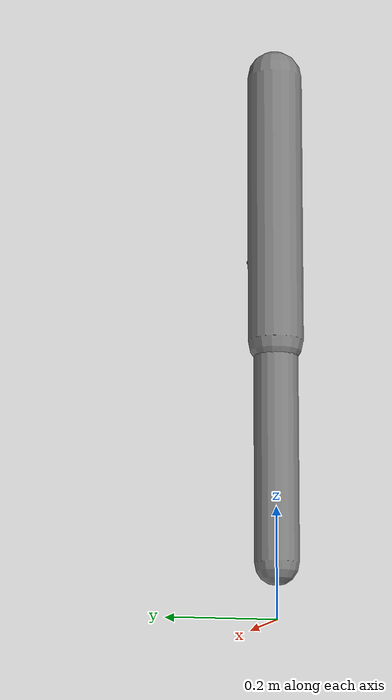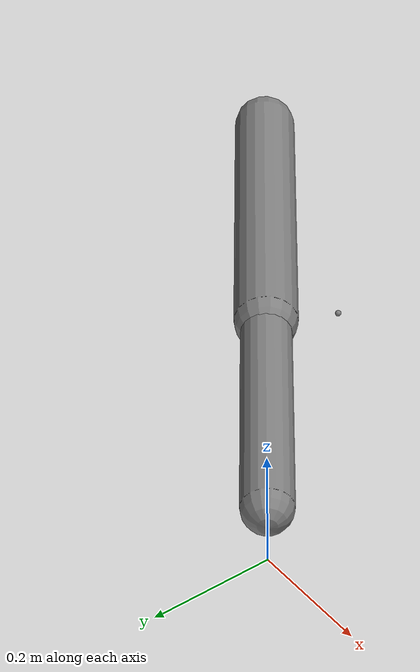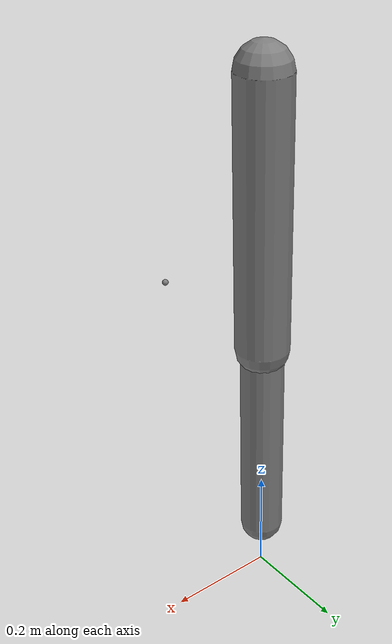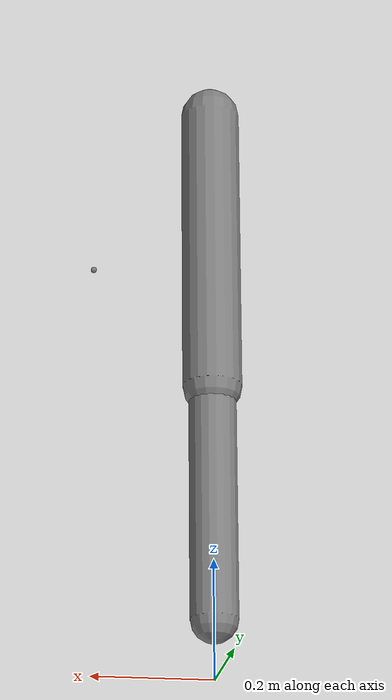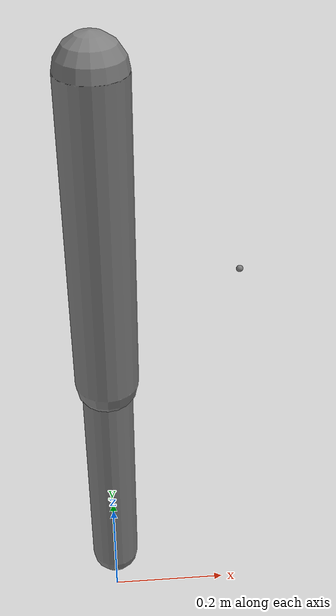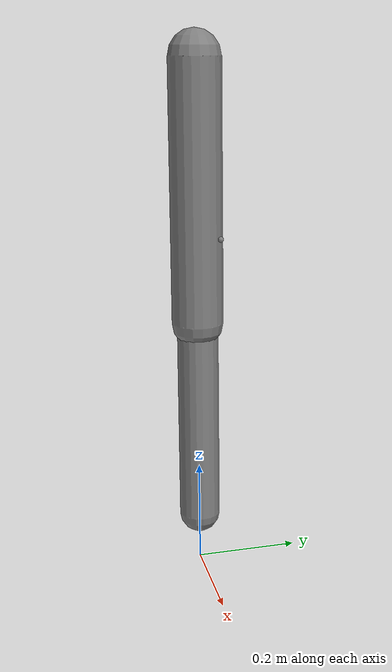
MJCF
<mujoco model="mode_a_rot_conformance">
            <option gravity="0 0 -9.81" timestep="0.001"/>
            <worldbody>
                <body name="b1" pos="0 0 1">
                    <joint name="j1" type="hinge" axis="0 1 0"/>
                    <geom type="capsule" size="0.05" fromto="0 0 0 0 0 -0.5"/>
                    <site name="torquer" pos="0.2 0 -0.3"/>
                    <body name="b2" pos="0 0 -0.5">
                        <joint name="j2" type="hinge" axis="0 1 0"/>
                        <geom type="capsule" size="0.04" fromto="0 0 0 0 0 -0.4"/>
                    </body>
                </body>
            </worldbody>
            <actuator>
                <general name="torquer" site="torquer" gear="0 0 0 0 1 0" ctrlrange="-100 100"/>
            </actuator>
        </mujoco>
